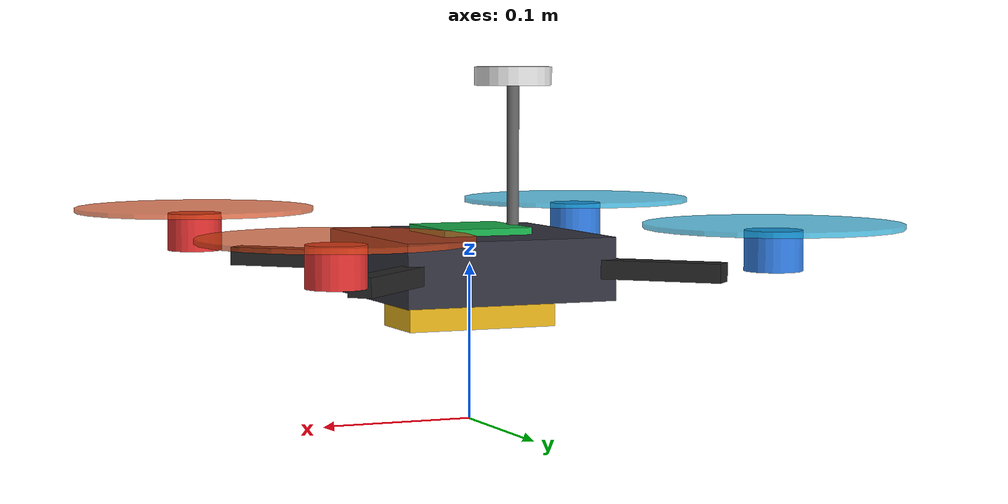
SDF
<?xml version="1.0" ?>
<sdf version="1.6">
  <model name="quadrotor">
    <pose>0 0 0.1 0 0 0</pose>
    <static>false</static>

    <!-- Central Chassis / LiteWing Body -->
    <link name="base_link">
      <inertial>

        <mass>1.0</mass>
        <inertia>
          <ixx>0.012</ixx>
          <ixy>0</ixy>
          <ixz>0</ixz>
          <iyy>0.012</iyy>
          <iyz>0</iyz>
          <izz>0.020</izz>
        </inertia>
      </inertial>

      <!-- Center Body Visual -->
      <visual name="chassis_visual">
        <pose>0 0 0 0 0 0</pose>
        <geometry>
          <box>
            <size>0.14 0.14 0.04</size>
          </box>
        </geometry>
        <material>
          <ambient>0.15 0.15 0.18 1</ambient>
          <diffuse>0.2 0.2 0.25 1</diffuse>
          <specular>0.5 0.5 0.5 1</specular>
        </material>
      </visual>

      <!-- LiteWing Flight Controller Board Visual -->
      <visual name="litewing_board">
        <pose>0 0 0.022 0 0 0</pose>
        <geometry>
          <box>
            <size>0.06 0.06 0.005</size>
          </box>
        </geometry>
        <material>
          <ambient>0.1 0.5 0.2 1</ambient>
          <diffuse>0.1 0.7 0.3 1</diffuse>
        </material>
      </visual>

      <!-- LiPo Battery Visual Underneath -->
      <visual name="battery_visual">
        <pose>0 0 -0.025 0 0 0</pose>
        <geometry>
          <box>
            <size>0.10 0.045 0.03</size>
          </box>
        </geometry>
        <material>
          <ambient>0.7 0.6 0.1 1</ambient>
          <diffuse>0.9 0.7 0.1 1</diffuse>
        </material>
      </visual>

      <!-- Elevated GPS Mast -->
      <visual name="gps_mast">
        <pose>-0.03 0 0.07 0 0 0</pose>
        <geometry>
          <cylinder>
            <radius>0.004</radius>
            <length>0.10</length>
          </cylinder>
        </geometry>
        <material>
          <ambient>0.3 0.3 0.3 1</ambient>
          <diffuse>0.4 0.4 0.4 1</diffuse>
        </material>
      </visual>

      <!-- GPS GNSS Antenna Puck -->
      <visual name="gps_antenna">
        <pose>-0.03 0 0.12 0 0 0</pose>
        <geometry>
          <cylinder>
            <radius>0.025</radius>
            <length>0.012</length>
          </cylinder>
        </geometry>
        <material>
          <ambient>0.8 0.8 0.8 1</ambient>
          <diffuse>0.9 0.9 0.9 1</diffuse>
        </material>
      </visual>

      <!-- Carbon Fiber Arm 1: Front-Right (+X, -Y) -->
      <visual name="arm_fr">
        <pose>0.07 -0.07 0 0 0 -0.7854</pose>
        <geometry>
          <box>
            <size>0.14 0.015 0.012</size>
          </box>
        </geometry>
        <material>
          <ambient>0.1 0.1 0.1 1</ambient>
          <diffuse>0.15 0.15 0.15 1</diffuse>
        </material>
      </visual>

      <!-- Carbon Fiber Arm 2: Front-Left (+X, +Y) -->
      <visual name="arm_fl">
        <pose>0.07 0.07 0 0 0 0.7854</pose>
        <geometry>
          <box>
            <size>0.14 0.015 0.012</size>
          </box>
        </geometry>
        <material>
          <ambient>0.1 0.1 0.1 1</ambient>
          <diffuse>0.15 0.15 0.15 1</diffuse>
        </material>
      </visual>

      <!-- Carbon Fiber Arm 3: Rear-Left (-X, +Y) -->
      <visual name="arm_rl">
        <pose>-0.07 0.07 0 0 0 -0.7854</pose>
        <geometry>
          <box>
            <size>0.14 0.015 0.012</size>
          </box>
        </geometry>
        <material>
          <ambient>0.1 0.1 0.1 1</ambient>
          <diffuse>0.15 0.15 0.15 1</diffuse>
        </material>
      </visual>

      <!-- Carbon Fiber Arm 4: Rear-Right (-X, -Y) -->
      <visual name="arm_rr">
        <pose>-0.07 -0.07 0 0 0 0.7854</pose>
        <geometry>
          <box>
            <size>0.14 0.015 0.012</size>
          </box>
        </geometry>
        <material>
          <ambient>0.1 0.1 0.1 1</ambient>
          <diffuse>0.15 0.15 0.15 1</diffuse>
        </material>
      </visual>

      <!-- Motor Mounts -->
      <visual name="motor_fr">
        <pose>0.1414 -0.1414 0.015 0 0 0</pose>
        <geometry>
          <cylinder><radius>0.018</radius><length>0.025</length></cylinder>
        </geometry>
        <material><ambient>0.8 0.1 0.1 1</ambient><diffuse>0.9 0.2 0.2 1</diffuse></material>
      </visual>
      <visual name="motor_fl">
        <pose>0.1414 0.1414 0.015 0 0 0</pose>
        <geometry>
          <cylinder><radius>0.018</radius><length>0.025</length></cylinder>
        </geometry>
        <material><ambient>0.8 0.1 0.1 1</ambient><diffuse>0.9 0.2 0.2 1</diffuse></material>
      </visual>
      <visual name="motor_rl">
        <pose>-0.1414 0.1414 0.015 0 0 0</pose>
        <geometry>
          <cylinder><radius>0.018</radius><length>0.025</length></cylinder>
        </geometry>
        <material><ambient>0.1 0.4 0.8 1</ambient><diffuse>0.2 0.5 0.9 1</diffuse></material>
      </visual>
      <visual name="motor_rr">
        <pose>-0.1414 -0.1414 0.015 0 0 0</pose>
        <geometry>
          <cylinder><radius>0.018</radius><length>0.025</length></cylinder>
        </geometry>
        <material><ambient>0.1 0.4 0.8 1</ambient><diffuse>0.2 0.5 0.9 1</diffuse></material>
      </visual>

      <!-- Propeller Discs (Front = Red/Amber, Rear = Cyan/Blue) -->
      <visual name="prop_fr">
        <pose>0.1414 -0.1414 0.03 0 0 0</pose>
        <geometry>
          <cylinder><radius>0.08</radius><length>0.003</length></cylinder>
        </geometry>
        <material><ambient>0.9 0.3 0.1 0.7</ambient><diffuse>0.9 0.3 0.1 0.7</diffuse></material>
      </visual>
      <visual name="prop_fl">
        <pose>0.1414 0.1414 0.03 0 0 0</pose>
        <geometry>
          <cylinder><radius>0.08</radius><length>0.003</length></cylinder>
        </geometry>
        <material><ambient>0.9 0.3 0.1 0.7</ambient><diffuse>0.9 0.3 0.1 0.7</diffuse></material>
      </visual>
      <visual name="prop_rl">
        <pose>-0.1414 0.1414 0.03 0 0 0</pose>
        <geometry>
          <cylinder><radius>0.08</radius><length>0.003</length></cylinder>
        </geometry>
        <material><ambient>0.1 0.7 0.9 0.7</ambient><diffuse>0.1 0.7 0.9 0.7</diffuse></material>
      </visual>
      <visual name="prop_rr">
        <pose>-0.1414 -0.1414 0.03 0 0 0</pose>
        <geometry>
          <cylinder><radius>0.08</radius><length>0.003</length></cylinder>
        </geometry>
        <material><ambient>0.1 0.7 0.9 0.7</ambient><diffuse>0.1 0.7 0.9 0.7</diffuse></material>
      </visual>

      <!-- Main Body Collision Cylinder -->
      <collision name="chassis_collision">
        <pose>0 0 0 0 0 0</pose>
        <geometry>
          <cylinder>
            <radius>0.24</radius>
            <length>0.08</length>
          </cylinder>
        </geometry>
      </collision>
    </link>

    <!-- Zero-Latency Native In-Memory 6-DOF UDP Telemetry Plugin -->
    <plugin name="quadrotor_pose_plugin" filename="libquadrotor_pose_plugin.so"/>
  </model>
</sdf>
